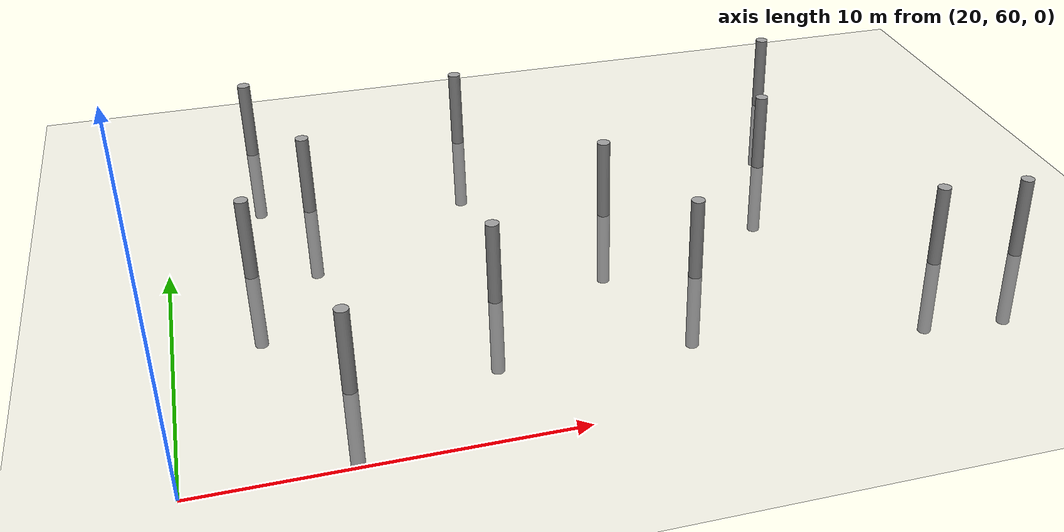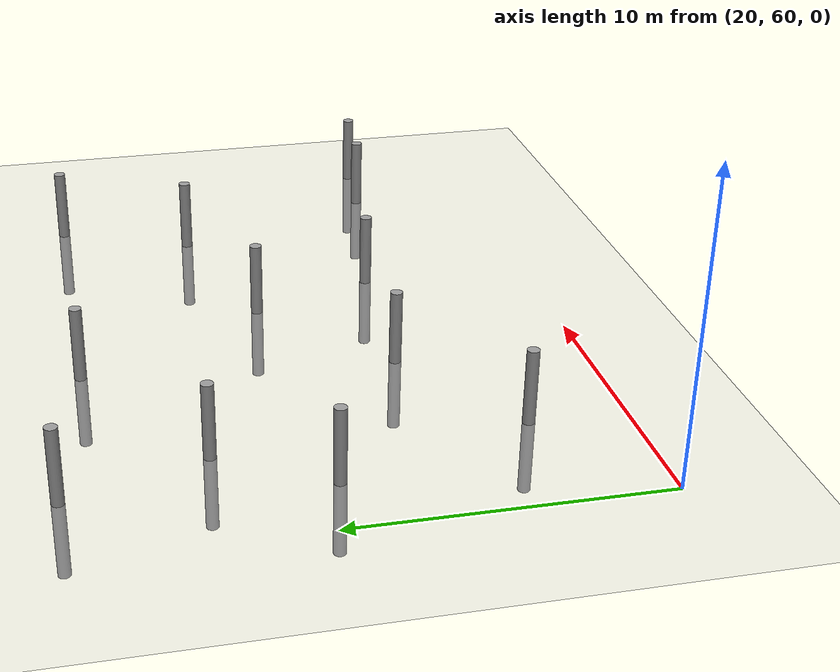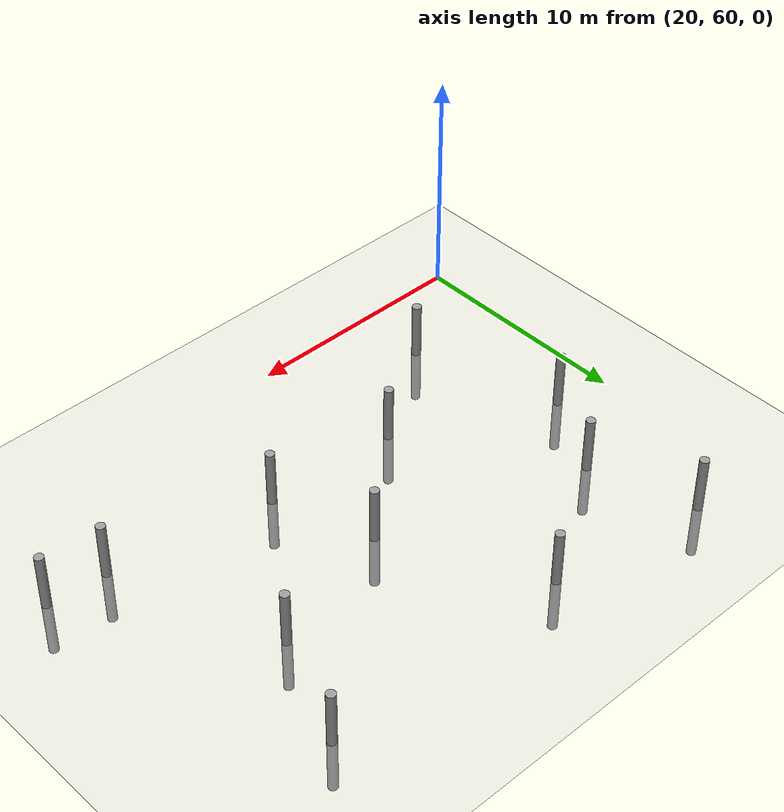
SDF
<sdf version="1.6">
 <world name="default">
  <model name="ground_plane">
   <static>1</static>
   <link name="link">
    <collision name="collision">
     <geometry><plane><normal>0 0 1</normal><size>100 100</size></plane></geometry>
     <surface><friction><ode><mu>100</mu><mu2>50</mu2></ode></friction></surface>
    </collision>
    <visual name="visual">
     <cast_shadows>0</cast_shadows>
     <geometry><plane><normal>0 0 1</normal><size>100 100</size></plane></geometry>
     <material>
      <script><uri>file://media/materials/scripts/gazebo.material</uri><name>Gazebo/Grey</name></script>
     </material>
    </visual>
   </link>
  </model>
  <model name="empty_pillars_1">
   <link name="link">
    <inertial>
     <mass>1</mass>
     <inertia><ixx>0.145833</ixx><ixy>0</ixy><ixz>0</ixz><iyy>0.145833</iyy><iyz>0</iyz><izz>0.125</izz></inertia>
    </inertial>
    <visual name="visual">
     <geometry><cylinder><radius>0.2</radius><length>5</length></cylinder></geometry>
     <material>
      <script><name>Gazebo/Grey</name><uri>file://media/materials/scripts/gazebo.material</uri></script>
      <shader type="vertex"><normal_map>__default__</normal_map></shader>
      <ambient>0.3 0.3 0.3 1</ambient>
      <diffuse>0.7 0.7 0.7 1</diffuse>
      <specular>0.01 0.01 0.01 1</specular>
      <emissive>0 0 0 1</emissive>
     </material>
    </visual>
    <collision name="collision">
     <geometry><cylinder><radius>0.05</radius><length>5</length></cylinder></geometry>
     <surface>
      <friction>
       <ode><mu>1</mu><mu2>1</mu2><fdir1>0 0 0</fdir1><slip1>0</slip1><slip2>0</slip2></ode>
       <torsional>
        <coefficient>1</coefficient>
        <patch_radius>0</patch_radius>
        <surface_radius>0</surface_radius>
        <use_patch_radius>1</use_patch_radius>
        <ode><slip>0</slip></ode>
       </torsional>
      </friction>
      <bounce><restitution_coefficient>0</restitution_coefficient><threshold>1e+06</threshold></bounce>
      <contact>
       <collide_without_contact>0</collide_without_contact>
       <collide_without_contact_bitmask>1</collide_without_contact_bitmask>
       <collide_bitmask>1</collide_bitmask>
       <ode>
        <soft_cfm>0</soft_cfm>
        <soft_erp>0.2</soft_erp>
        <kp>1e+13</kp>
        <kd>1</kd>
        <max_vel>0.01</max_vel>
        <min_depth>0</min_depth>
       </ode>
       <bullet>
        <split_impulse>1</split_impulse>
        <split_impulse_penetration_threshold>-0.01</split_impulse_penetration_threshold>
        <soft_cfm>0</soft_cfm>
        <soft_erp>0.2</soft_erp>
        <kp>1e+13</kp>
        <kd>1</kd>
       </bullet>
      </contact>
     </surface>
    </collision>
   </link>
   <model name="empty_pillar_clone">
    <link name="link">
     <inertial>
      <mass>1</mass>
      <inertia><ixx>0.145833</ixx><ixy>0</ixy><ixz>0</ixz><iyy>0.145833</iyy><iyz>0</iyz><izz>0.125</izz></inertia>
     </inertial>
     <visual name="visual">
      <geometry><cylinder><radius>0.2</radius><length>5</length></cylinder></geometry>
      <material>
       <script><name>Gazebo/Grey</name><uri>file://media/materials/scripts/gazebo.material</uri></script>
       <shader type="vertex"><normal_map>__default__</normal_map></shader>
       <ambient>0.3 0.3 0.3 1</ambient>
       <diffuse>0.7 0.7 0.7 1</diffuse>
       <specular>0.01 0.01 0.01 1</specular>
       <emissive>0 0 0 1</emissive>
      </material>
     </visual>
     <collision name="collision">
      <geometry><cylinder><radius>0.05</radius><length>5</length></cylinder></geometry>
      <surface>
       <friction>
        <ode><mu>1</mu><mu2>1</mu2><fdir1>0 0 0</fdir1><slip1>0</slip1><slip2>0</slip2></ode>
        <torsional>
         <coefficient>1</coefficient>
         <patch_radius>0</patch_radius>
         <surface_radius>0</surface_radius>
         <use_patch_radius>1</use_patch_radius>
         <ode><slip>0</slip></ode>
        </torsional>
       </friction>
       <bounce><restitution_coefficient>0</restitution_coefficient><threshold>1e+06</threshold></bounce>
       <contact>
        <collide_without_contact>0</collide_without_contact>
        <collide_without_contact_bitmask>1</collide_without_contact_bitmask>
        <collide_bitmask>1</collide_bitmask>
        <ode>
         <soft_cfm>0</soft_cfm>
         <soft_erp>0.2</soft_erp>
         <kp>1e+13</kp>
         <kd>1</kd>
         <max_vel>0.01</max_vel>
         <min_depth>0</min_depth>
        </ode>
        <bullet>
         <split_impulse>1</split_impulse>
         <split_impulse_penetration_threshold>-0.01</split_impulse_penetration_threshold>
         <soft_cfm>0</soft_cfm>
         <soft_erp>0.2</soft_erp>
         <kp>1e+13</kp>
         <kd>1</kd>
        </bullet>
       </contact>
      </surface>
     </collision>
    </link>
    <static>0</static>
    <pose>1.47843 -4.49529 0 0 -0 0</pose>
   </model>
   <model name="empty_pillar_clone_0">
    <link name="link">
     <inertial>
      <mass>1</mass>
      <inertia><ixx>0.145833</ixx><ixy>0</ixy><ixz>0</ixz><iyy>0.145833</iyy><iyz>0</iyz><izz>0.125</izz></inertia>
     </inertial>
     <visual name="visual">
      <geometry><cylinder><radius>0.2</radius><length>5</length></cylinder></geometry>
      <material>
       <script><name>Gazebo/Grey</name><uri>file://media/materials/scripts/gazebo.material</uri></script>
       <shader type="vertex"><normal_map>__default__</normal_map></shader>
       <ambient>0.3 0.3 0.3 1</ambient>
       <diffuse>0.7 0.7 0.7 1</diffuse>
       <specular>0.01 0.01 0.01 1</specular>
       <emissive>0 0 0 1</emissive>
      </material>
     </visual>
     <collision name="collision">
      <geometry><cylinder><radius>0.05</radius><length>5</length></cylinder></geometry>
      <surface>
       <friction>
        <ode><mu>1</mu><mu2>1</mu2><fdir1>0 0 0</fdir1><slip1>0</slip1><slip2>0</slip2></ode>
        <torsional>
         <coefficient>1</coefficient>
         <patch_radius>0</patch_radius>
         <surface_radius>0</surface_radius>
         <use_patch_radius>1</use_patch_radius>
         <ode><slip>0</slip></ode>
        </torsional>
       </friction>
       <bounce><restitution_coefficient>0</restitution_coefficient><threshold>1e+06</threshold></bounce>
       <contact>
        <collide_without_contact>0</collide_without_contact>
        <collide_without_contact_bitmask>1</collide_without_contact_bitmask>
        <collide_bitmask>1</collide_bitmask>
        <ode>
         <soft_cfm>0</soft_cfm>
         <soft_erp>0.2</soft_erp>
         <kp>1e+13</kp>
         <kd>1</kd>
         <max_vel>0.01</max_vel>
         <min_depth>0</min_depth>
        </ode>
        <bullet>
         <split_impulse>1</split_impulse>
         <split_impulse_penetration_threshold>-0.01</split_impulse_penetration_threshold>
         <soft_cfm>0</soft_cfm>
         <soft_erp>0.2</soft_erp>
         <kp>1e+13</kp>
         <kd>1</kd>
        </bullet>
       </contact>
      </surface>
     </collision>
    </link>
    <static>0</static>
    <pose>10.3453 -7.35986 0 0 -0 0</pose>
   </model>
   <model name="empty_pillar_clone_2">
    <link name="link">
     <inertial>
      <mass>1</mass>
      <inertia><ixx>0.145833</ixx><ixy>0</ixy><ixz>0</ixz><iyy>0.145833</iyy><iyz>0</iyz><izz>0.125</izz></inertia>
     </inertial>
     <visual name="visual">
      <geometry><cylinder><radius>0.2</radius><length>5</length></cylinder></geometry>
      <material>
       <script><name>Gazebo/Grey</name><uri>file://media/materials/scripts/gazebo.material</uri></script>
       <shader type="vertex"><normal_map>__default__</normal_map></shader>
       <ambient>0.3 0.3 0.3 1</ambient>
       <diffuse>0.7 0.7 0.7 1</diffuse>
       <specular>0.01 0.01 0.01 1</specular>
       <emissive>0 0 0 1</emissive>
      </material>
     </visual>
     <collision name="collision">
      <geometry><cylinder><radius>0.05</radius><length>5</length></cylinder></geometry>
      <surface>
       <friction>
        <ode><mu>1</mu><mu2>1</mu2><fdir1>0 0 0</fdir1><slip1>0</slip1><slip2>0</slip2></ode>
        <torsional>
         <coefficient>1</coefficient>
         <patch_radius>0</patch_radius>
         <surface_radius>0</surface_radius>
         <use_patch_radius>1</use_patch_radius>
         <ode><slip>0</slip></ode>
        </torsional>
       </friction>
       <bounce><restitution_coefficient>0</restitution_coefficient><threshold>1e+06</threshold></bounce>
       <contact>
        <collide_without_contact>0</collide_without_contact>
        <collide_without_contact_bitmask>1</collide_without_contact_bitmask>
        <collide_bitmask>1</collide_bitmask>
        <ode>
         <soft_cfm>0</soft_cfm>
         <soft_erp>0.2</soft_erp>
         <kp>1e+13</kp>
         <kd>1</kd>
         <max_vel>0.01</max_vel>
         <min_depth>0</min_depth>
        </ode>
        <bullet>
         <split_impulse>1</split_impulse>
         <split_impulse_penetration_threshold>-0.01</split_impulse_penetration_threshold>
         <soft_cfm>0</soft_cfm>
         <soft_erp>0.2</soft_erp>
         <kp>1e+13</kp>
         <kd>1</kd>
        </bullet>
       </contact>
      </surface>
     </collision>
    </link>
    <static>0</static>
    <pose>6.92427 -1.06221 0 0 -0 0</pose>
   </model>
   <model name="empty_pillar_clone_3">
    <link name="link">
     <inertial>
      <mass>1</mass>
      <inertia><ixx>0.145833</ixx><ixy>0</ixy><ixz>0</ixz><iyy>0.145833</iyy><iyz>0</iyz><izz>0.125</izz></inertia>
     </inertial>
     <visual name="visual">
      <geometry><cylinder><radius>0.2</radius><length>5</length></cylinder></geometry>
      <material>
       <script><name>Gazebo/Grey</name><uri>file://media/materials/scripts/gazebo.material</uri></script>
       <shader type="vertex"><normal_map>__default__</normal_map></shader>
       <ambient>0.3 0.3 0.3 1</ambient>
       <diffuse>0.7 0.7 0.7 1</diffuse>
       <specular>0.01 0.01 0.01 1</specular>
       <emissive>0 0 0 1</emissive>
      </material>
     </visual>
     <collision name="collision">
      <geometry><cylinder><radius>0.05</radius><length>5</length></cylinder></geometry>
      <surface>
       <friction>
        <ode><mu>1</mu><mu2>1</mu2><fdir1>0 0 0</fdir1><slip1>0</slip1><slip2>0</slip2></ode>
        <torsional>
         <coefficient>1</coefficient>
         <patch_radius>0</patch_radius>
         <surface_radius>0</surface_radius>
         <use_patch_radius>1</use_patch_radius>
         <ode><slip>0</slip></ode>
        </torsional>
       </friction>
       <bounce><restitution_coefficient>0</restitution_coefficient><threshold>1e+06</threshold></bounce>
       <contact>
        <collide_without_contact>0</collide_without_contact>
        <collide_without_contact_bitmask>1</collide_without_contact_bitmask>
        <collide_bitmask>1</collide_bitmask>
        <ode>
         <soft_cfm>0</soft_cfm>
         <soft_erp>0.2</soft_erp>
         <kp>1e+13</kp>
         <kd>1</kd>
         <max_vel>0.01</max_vel>
         <min_depth>0</min_depth>
        </ode>
        <bullet>
         <split_impulse>1</split_impulse>
         <split_impulse_penetration_threshold>-0.01</split_impulse_penetration_threshold>
         <soft_cfm>0</soft_cfm>
         <soft_erp>0.2</soft_erp>
         <kp>1e+13</kp>
         <kd>1</kd>
        </bullet>
       </contact>
      </surface>
     </collision>
    </link>
    <static>0</static>
    <pose>5.99316 -11.2211 0 0 -0 0</pose>
   </model>
   <model name="empty_pillar_clone_33">
    <link name="link">
     <inertial>
      <mass>1</mass>
      <inertia><ixx>0.145833</ixx><ixy>0</ixy><ixz>0</ixz><iyy>0.145833</iyy><iyz>0</iyz><izz>0.125</izz></inertia>
     </inertial>
     <visual name="visual">
      <geometry><cylinder><radius>0.2</radius><length>5</length></cylinder></geometry>
      <material>
       <script><name>Gazebo/Grey</name><uri>file://media/materials/scripts/gazebo.material</uri></script>
       <shader type="vertex"><normal_map>__default__</normal_map></shader>
       <ambient>0.3 0.3 0.3 1</ambient>
       <diffuse>0.7 0.7 0.7 1</diffuse>
       <specular>0.01 0.01 0.01 1</specular>
       <emissive>0 0 0 1</emissive>
      </material>
     </visual>
     <collision name="collision">
      <geometry><cylinder><radius>0.05</radius><length>5</length></cylinder></geometry>
      <surface>
       <friction>
        <ode><mu>1</mu><mu2>1</mu2><fdir1>0 0 0</fdir1><slip1>0</slip1><slip2>0</slip2></ode>
        <torsional>
         <coefficient>1</coefficient>
         <patch_radius>0</patch_radius>
         <surface_radius>0</surface_radius>
         <use_patch_radius>1</use_patch_radius>
         <ode><slip>0</slip></ode>
        </torsional>
       </friction>
       <bounce><restitution_coefficient>0</restitution_coefficient><threshold>1e+06</threshold></bounce>
       <contact>
        <collide_without_contact>0</collide_without_contact>
        <collide_without_contact_bitmask>1</collide_without_contact_bitmask>
        <collide_bitmask>1</collide_bitmask>
        <ode>
         <soft_cfm>0</soft_cfm>
         <soft_erp>0.2</soft_erp>
         <kp>1e+13</kp>
         <kd>1</kd>
         <max_vel>0.01</max_vel>
         <min_depth>0</min_depth>
        </ode>
        <bullet>
         <split_impulse>1</split_impulse>
         <split_impulse_penetration_threshold>-0.01</split_impulse_penetration_threshold>
         <soft_cfm>0</soft_cfm>
         <soft_erp>0.2</soft_erp>
         <kp>1e+13</kp>
         <kd>1</kd>
        </bullet>
       </contact>
      </surface>
     </collision>
    </link>
    <static>0</static>
    <pose>21.5621 -13.0704 0 0 -0 0</pose>
   </model>
   <model name="empty_pillar_clone_4">
    <link name="link">
     <inertial>
      <mass>1</mass>
      <inertia><ixx>0.145833</ixx><ixy>0</ixy><ixz>0</ixz><iyy>0.145833</iyy><iyz>0</iyz><izz>0.125</izz></inertia>
     </inertial>
     <visual name="visual">
      <geometry><cylinder><radius>0.2</radius><length>5</length></cylinder></geometry>
      <material>
       <script><name>Gazebo/Grey</name><uri>file://media/materials/scripts/gazebo.material</uri></script>
       <shader type="vertex"><normal_map>__default__</normal_map></shader>
       <ambient>0.3 0.3 0.3 1</ambient>
       <diffuse>0.7 0.7 0.7 1</diffuse>
       <specular>0.01 0.01 0.01 1</specular>
       <emissive>0 0 0 1</emissive>
      </material>
     </visual>
     <collision name="collision">
      <geometry><cylinder><radius>0.05</radius><length>5</length></cylinder></geometry>
      <surface>
       <friction>
        <ode><mu>1</mu><mu2>1</mu2><fdir1>0 0 0</fdir1><slip1>0</slip1><slip2>0</slip2></ode>
        <torsional>
         <coefficient>1</coefficient>
         <patch_radius>0</patch_radius>
         <surface_radius>0</surface_radius>
         <use_patch_radius>1</use_patch_radius>
         <ode><slip>0</slip></ode>
        </torsional>
       </friction>
       <bounce><restitution_coefficient>0</restitution_coefficient><threshold>1e+06</threshold></bounce>
       <contact>
        <collide_without_contact>0</collide_without_contact>
        <collide_without_contact_bitmask>1</collide_without_contact_bitmask>
        <collide_bitmask>1</collide_bitmask>
        <ode>
         <soft_cfm>0</soft_cfm>
         <soft_erp>0.2</soft_erp>
         <kp>1e+13</kp>
         <kd>1</kd>
         <max_vel>0.01</max_vel>
         <min_depth>0</min_depth>
        </ode>
        <bullet>
         <split_impulse>1</split_impulse>
         <split_impulse_penetration_threshold>-0.01</split_impulse_penetration_threshold>
         <soft_cfm>0</soft_cfm>
         <soft_erp>0.2</soft_erp>
         <kp>1e+13</kp>
         <kd>1</kd>
        </bullet>
       </contact>
      </surface>
     </collision>
    </link>
    <static>0</static>
    <pose>1.48428 -14.2998 0 0 -0 0</pose>
   </model>
   <model name="empty_pillar_clone_47">
    <link name="link">
     <inertial>
      <mass>1</mass>
      <inertia><ixx>0.145833</ixx><ixy>0</ixy><ixz>0</ixz><iyy>0.145833</iyy><iyz>0</iyz><izz>0.125</izz></inertia>
     </inertial>
     <visual name="visual">
      <geometry><cylinder><radius>0.2</radius><length>5</length></cylinder></geometry>
      <material>
       <script><name>Gazebo/Grey</name><uri>file://media/materials/scripts/gazebo.material</uri></script>
       <shader type="vertex"><normal_map>__default__</normal_map></shader>
       <ambient>0.3 0.3 0.3 1</ambient>
       <diffuse>0.7 0.7 0.7 1</diffuse>
       <specular>0.01 0.01 0.01 1</specular>
       <emissive>0 0 0 1</emissive>
      </material>
     </visual>
     <collision name="collision">
      <geometry><cylinder><radius>0.05</radius><length>5</length></cylinder></geometry>
      <surface>
       <friction>
        <ode><mu>1</mu><mu2>1</mu2><fdir1>0 0 0</fdir1><slip1>0</slip1><slip2>0</slip2></ode>
        <torsional>
         <coefficient>1</coefficient>
         <patch_radius>0</patch_radius>
         <surface_radius>0</surface_radius>
         <use_patch_radius>1</use_patch_radius>
         <ode><slip>0</slip></ode>
        </torsional>
       </friction>
       <bounce><restitution_coefficient>0</restitution_coefficient><threshold>1e+06</threshold></bounce>
       <contact>
        <collide_without_contact>0</collide_without_contact>
        <collide_without_contact_bitmask>1</collide_without_contact_bitmask>
        <collide_bitmask>1</collide_bitmask>
        <ode>
         <soft_cfm>0</soft_cfm>
         <soft_erp>0.2</soft_erp>
         <kp>1e+13</kp>
         <kd>1</kd>
         <max_vel>0.01</max_vel>
         <min_depth>0</min_depth>
        </ode>
        <bullet>
         <split_impulse>1</split_impulse>
         <split_impulse_penetration_threshold>-0.01</split_impulse_penetration_threshold>
         <soft_cfm>0</soft_cfm>
         <soft_erp>0.2</soft_erp>
         <kp>1e+13</kp>
         <kd>1</kd>
        </bullet>
       </contact>
      </surface>
     </collision>
    </link>
    <static>0</static>
    <pose>-0.569433 -7.97346 0 0 -0 0</pose>
   </model>
   <model name="empty_pillar_clone_48">
    <link name="link">
     <inertial>
      <mass>1</mass>
      <inertia><ixx>0.145833</ixx><ixy>0</ixy><ixz>0</ixz><iyy>0.145833</iyy><iyz>0</iyz><izz>0.125</izz></inertia>
     </inertial>
     <visual name="visual">
      <geometry><cylinder><radius>0.2</radius><length>5</length></cylinder></geometry>
      <material>
       <script><name>Gazebo/Grey</name><uri>file://media/materials/scripts/gazebo.material</uri></script>
       <shader type="vertex"><normal_map>__default__</normal_map></shader>
       <ambient>0.3 0.3 0.3 1</ambient>
       <diffuse>0.7 0.7 0.7 1</diffuse>
       <specular>0.01 0.01 0.01 1</specular>
       <emissive>0 0 0 1</emissive>
      </material>
     </visual>
     <collision name="collision">
      <geometry><cylinder><radius>0.05</radius><length>5</length></cylinder></geometry>
      <surface>
       <friction>
        <ode><mu>1</mu><mu2>1</mu2><fdir1>0 0 0</fdir1><slip1>0</slip1><slip2>0</slip2></ode>
        <torsional>
         <coefficient>1</coefficient>
         <patch_radius>0</patch_radius>
         <surface_radius>0</surface_radius>
         <use_patch_radius>1</use_patch_radius>
         <ode><slip>0</slip></ode>
        </torsional>
       </friction>
       <bounce><restitution_coefficient>0</restitution_coefficient><threshold>1e+06</threshold></bounce>
       <contact>
        <collide_without_contact>0</collide_without_contact>
        <collide_without_contact_bitmask>1</collide_without_contact_bitmask>
        <collide_bitmask>1</collide_bitmask>
        <ode>
         <soft_cfm>0</soft_cfm>
         <soft_erp>0.2</soft_erp>
         <kp>1e+13</kp>
         <kd>1</kd>
         <max_vel>0.01</max_vel>
         <min_depth>0</min_depth>
        </ode>
        <bullet>
         <split_impulse>1</split_impulse>
         <split_impulse_penetration_threshold>-0.01</split_impulse_penetration_threshold>
         <soft_cfm>0</soft_cfm>
         <soft_erp>0.2</soft_erp>
         <kp>1e+13</kp>
         <kd>1</kd>
        </bullet>
       </contact>
      </surface>
     </collision>
    </link>
    <static>0</static>
    <pose>16.2633 -5.65052 0 0 -0 0</pose>
   </model>
   <model name="empty_pillar_clone_51">
    <link name="link">
     <inertial>
      <mass>1</mass>
      <inertia><ixx>0.145833</ixx><ixy>0</ixy><ixz>0</ixz><iyy>0.145833</iyy><iyz>0</iyz><izz>0.125</izz></inertia>
     </inertial>
     <visual name="visual">
      <geometry><cylinder><radius>0.2</radius><length>5</length></cylinder></geometry>
      <material>
       <script><name>Gazebo/Grey</name><uri>file://media/materials/scripts/gazebo.material</uri></script>
       <shader type="vertex"><normal_map>__default__</normal_map></shader>
       <ambient>0.3 0.3 0.3 1</ambient>
       <diffuse>0.7 0.7 0.7 1</diffuse>
       <specular>0.01 0.01 0.01 1</specular>
       <emissive>0 0 0 1</emissive>
      </material>
     </visual>
     <collision name="collision">
      <geometry><cylinder><radius>0.05</radius><length>5</length></cylinder></geometry>
      <surface>
       <friction>
        <ode><mu>1</mu><mu2>1</mu2><fdir1>0 0 0</fdir1><slip1>0</slip1><slip2>0</slip2></ode>
        <torsional>
         <coefficient>1</coefficient>
         <patch_radius>0</patch_radius>
         <surface_radius>0</surface_radius>
         <use_patch_radius>1</use_patch_radius>
         <ode><slip>0</slip></ode>
        </torsional>
       </friction>
       <bounce><restitution_coefficient>0</restitution_coefficient><threshold>1e+06</threshold></bounce>
       <contact>
        <collide_without_contact>0</collide_without_contact>
        <collide_without_contact_bitmask>1</collide_without_contact_bitmask>
        <collide_bitmask>1</collide_bitmask>
        <ode>
         <soft_cfm>0</soft_cfm>
         <soft_erp>0.2</soft_erp>
         <kp>1e+13</kp>
         <kd>1</kd>
         <max_vel>0.01</max_vel>
         <min_depth>0</min_depth>
        </ode>
        <bullet>
         <split_impulse>1</split_impulse>
         <split_impulse_penetration_threshold>-0.01</split_impulse_penetration_threshold>
         <soft_cfm>0</soft_cfm>
         <soft_erp>0.2</soft_erp>
         <kp>1e+13</kp>
         <kd>1</kd>
        </bullet>
       </contact>
      </surface>
     </collision>
    </link>
    <static>0</static>
    <pose>11.8943 -11.5792 0 0 -0 0</pose>
   </model>
   <model name="empty_pillar_clone_8">
    <link name="link">
     <inertial>
      <mass>1</mass>
      <inertia><ixx>0.145833</ixx><ixy>0</ixy><ixz>0</ixz><iyy>0.145833</iyy><iyz>0</iyz><izz>0.125</izz></inertia>
     </inertial>
     <visual name="visual">
      <geometry><cylinder><radius>0.2</radius><length>5</length></cylinder></geometry>
      <material>
       <script><name>Gazebo/Grey</name><uri>file://media/materials/scripts/gazebo.material</uri></script>
       <shader type="vertex"><normal_map>__default__</normal_map></shader>
       <ambient>0.3 0.3 0.3 1</ambient>
       <diffuse>0.7 0.7 0.7 1</diffuse>
       <specular>0.01 0.01 0.01 1</specular>
       <emissive>0 0 0 1</emissive>
      </material>
     </visual>
     <collision name="collision">
      <geometry><cylinder><radius>0.05</radius><length>5</length></cylinder></geometry>
      <surface>
       <friction>
        <ode><mu>1</mu><mu2>1</mu2><fdir1>0 0 0</fdir1><slip1>0</slip1><slip2>0</slip2></ode>
        <torsional>
         <coefficient>1</coefficient>
         <patch_radius>0</patch_radius>
         <surface_radius>0</surface_radius>
         <use_patch_radius>1</use_patch_radius>
         <ode><slip>0</slip></ode>
        </torsional>
       </friction>
       <bounce><restitution_coefficient>0</restitution_coefficient><threshold>1e+06</threshold></bounce>
       <contact>
        <collide_without_contact>0</collide_without_contact>
        <collide_without_contact_bitmask>1</collide_without_contact_bitmask>
        <collide_bitmask>1</collide_bitmask>
        <ode>
         <soft_cfm>0</soft_cfm>
         <soft_erp>0.2</soft_erp>
         <kp>1e+13</kp>
         <kd>1</kd>
         <max_vel>0.01</max_vel>
         <min_depth>0</min_depth>
        </ode>
        <bullet>
         <split_impulse>1</split_impulse>
         <split_impulse_penetration_threshold>-0.01</split_impulse_penetration_threshold>
         <soft_cfm>0</soft_cfm>
         <soft_erp>0.2</soft_erp>
         <kp>1e+13</kp>
         <kd>1</kd>
        </bullet>
       </contact>
      </surface>
     </collision>
    </link>
    <static>0</static>
    <pose>18.9854 -12.8403 0 0 -0 0</pose>
   </model>
   <model name="empty_pillar_clone_9">
    <link name="link">
     <inertial>
      <mass>1</mass>
      <inertia><ixx>0.145833</ixx><ixy>0</ixy><ixz>0</ixz><iyy>0.145833</iyy><iyz>0</iyz><izz>0.125</izz></inertia>
     </inertial>
     <visual name="visual">
      <geometry><cylinder><radius>0.2</radius><length>5</length></cylinder></geometry>
      <material>
       <script><name>Gazebo/Grey</name><uri>file://media/materials/scripts/gazebo.material</uri></script>
       <shader type="vertex"><normal_map>__default__</normal_map></shader>
       <ambient>0.3 0.3 0.3 1</ambient>
       <diffuse>0.7 0.7 0.7 1</diffuse>
       <specular>0.01 0.01 0.01 1</specular>
       <emissive>0 0 0 1</emissive>
      </material>
     </visual>
     <collision name="collision">
      <geometry><cylinder><radius>0.05</radius><length>5</length></cylinder></geometry>
      <surface>
       <friction>
        <ode><mu>1</mu><mu2>1</mu2><fdir1>0 0 0</fdir1><slip1>0</slip1><slip2>0</slip2></ode>
        <torsional>
         <coefficient>1</coefficient>
         <patch_radius>0</patch_radius>
         <surface_radius>0</surface_radius>
         <use_patch_radius>1</use_patch_radius>
         <ode><slip>0</slip></ode>
        </torsional>
       </friction>
       <bounce><restitution_coefficient>0</restitution_coefficient><threshold>1e+06</threshold></bounce>
       <contact>
        <collide_without_contact>0</collide_without_contact>
        <collide_without_contact_bitmask>1</collide_without_contact_bitmask>
        <collide_bitmask>1</collide_bitmask>
        <ode>
         <soft_cfm>0</soft_cfm>
         <soft_erp>0.2</soft_erp>
         <kp>1e+13</kp>
         <kd>1</kd>
         <max_vel>0.01</max_vel>
         <min_depth>0</min_depth>
        </ode>
        <bullet>
         <split_impulse>1</split_impulse>
         <split_impulse_penetration_threshold>-0.01</split_impulse_penetration_threshold>
         <soft_cfm>0</soft_cfm>
         <soft_erp>0.2</soft_erp>
         <kp>1e+13</kp>
         <kd>1</kd>
        </bullet>
       </contact>
      </surface>
     </collision>
    </link>
    <static>0</static>
    <pose>18.1111 -1.13899 0 0 -0 0</pose>
   </model>
   <static>0</static>
   <pose>22.8728 77.4317 0 0 -0 0</pose>
  </model>
 </world>
</sdf>
